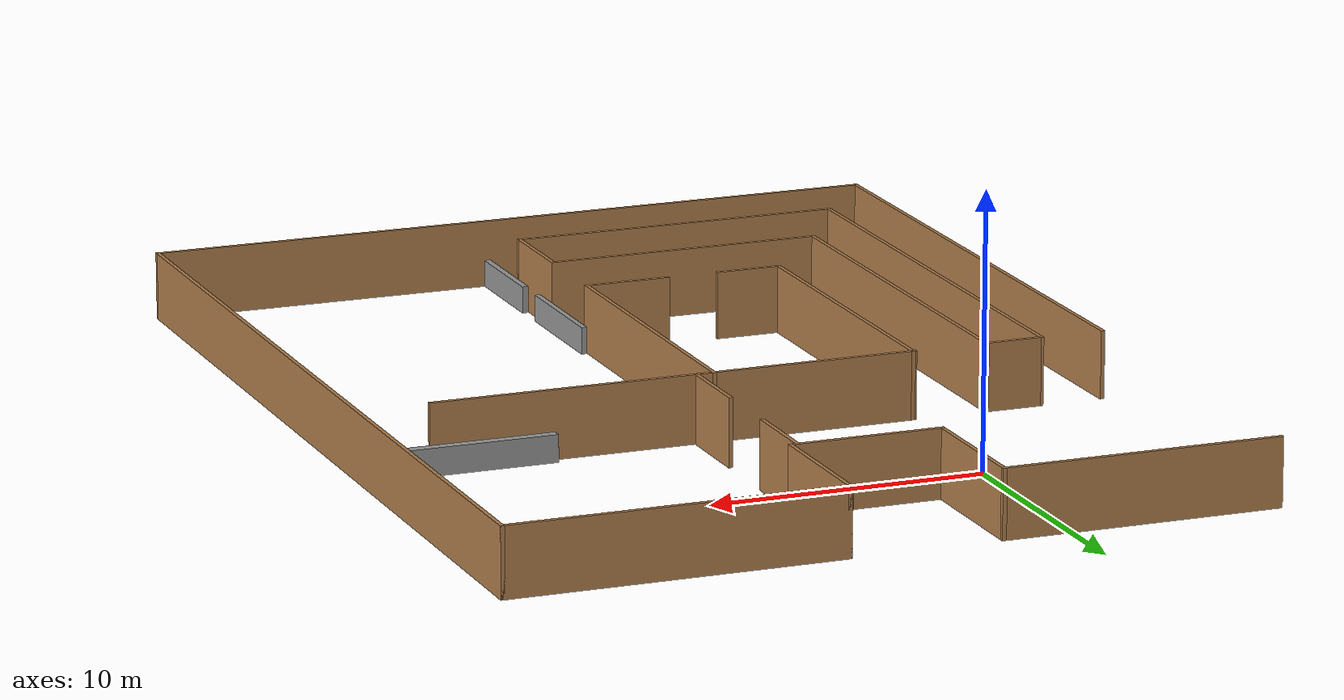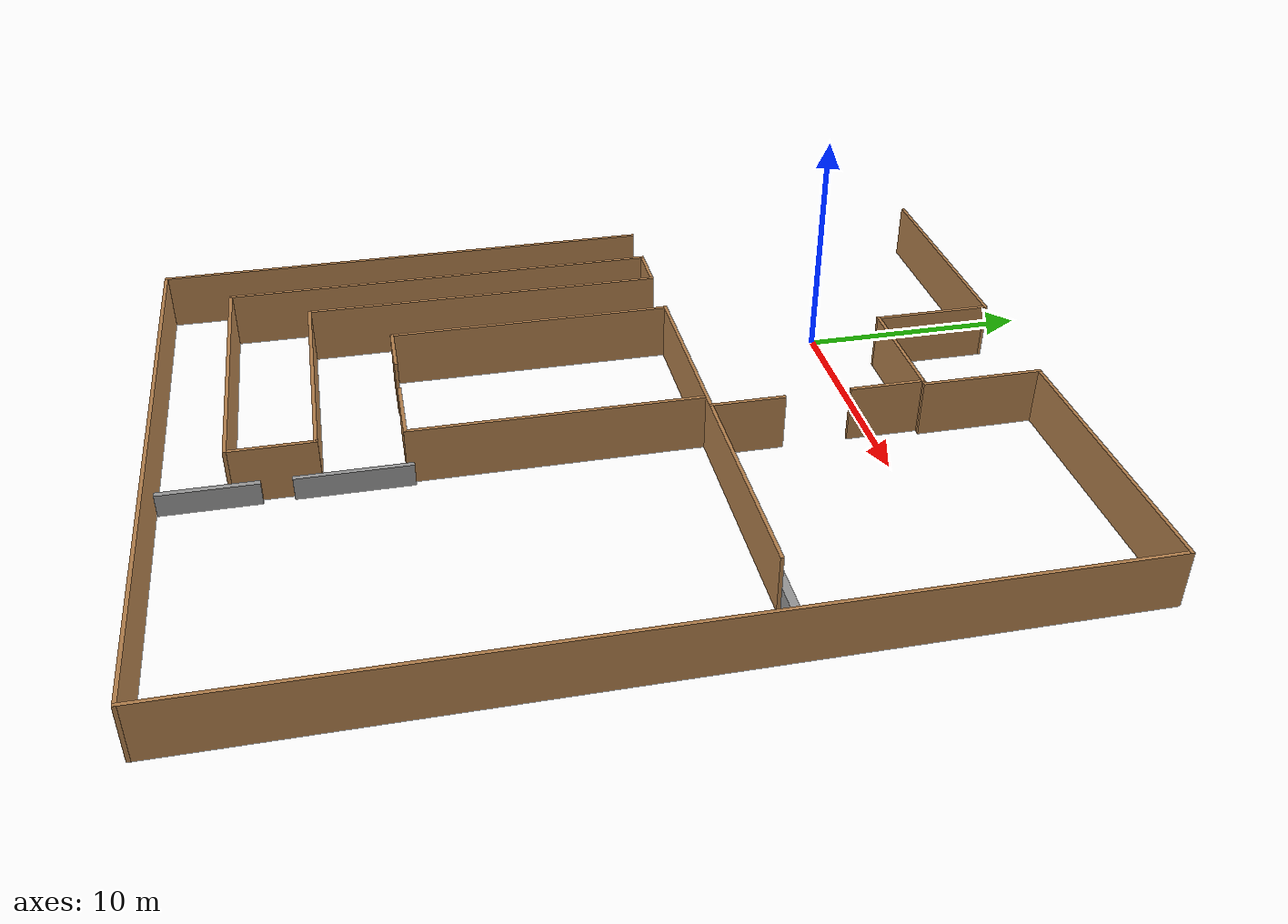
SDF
<sdf version="1.7">
 <world name="default">
  <gravity>0 0 -9.8</gravity>
  <magnetic_field>6e-06 2.3e-05 -4.2e-05</magnetic_field>
  <atmosphere type="adiabatic"/>
  <physics name="default_physics" default="0" type="ode">
   <max_step_size>0.001</max_step_size>
   <real_time_factor>1</real_time_factor>
   <real_time_update_rate>1000</real_time_update_rate>
  </physics>
  <scene>
   <ambient>0.4 0.4 0.4 1</ambient>
   <background>0.7 0.7 0.7 1</background>
   <shadows>1</shadows>
   <grid>0</grid>
   <origin_visual>0</origin_visual>
  </scene>
  <spherical_coordinates>
   <surface_model>EARTH_WGS84</surface_model>
   <latitude_deg>0</latitude_deg>
   <longitude_deg>0</longitude_deg>
   <elevation>0</elevation>
   <heading_deg>0</heading_deg>
  </spherical_coordinates>
  <light name="RetailShop_CeilingLight_001" type="point">
   <pose>2.77442 -3.62815 3.17847 0 -0 0</pose>
   <diffuse>0.5 0.5 0.5 1</diffuse>
   <specular>0.1 0.1 0.1 1</specular>
   <attenuation>
    <range>20</range>
    <constant>0.32</constant>
    <linear>0.01</linear>
    <quadratic>0.03</quadratic>
   </attenuation>
   <cast_shadows>0</cast_shadows>
   <direction>0 0 -1</direction>
   <spot><inner_angle>0</inner_angle><outer_angle>0</outer_angle><falloff>0</falloff></spot>
  </light>
  <light name="RetailShop_CeilingLight_002" type="point">
   <pose>5.38399 -5.38371 3.17847 0 -0 0</pose>
   <diffuse>0.5 0.5 0.5 1</diffuse>
   <specular>0.1 0.1 0.1 1</specular>
   <attenuation>
    <range>20</range>
    <constant>0.32</constant>
    <linear>0.01</linear>
    <quadratic>0.03</quadratic>
   </attenuation>
   <cast_shadows>0</cast_shadows>
   <direction>0 0 -1</direction>
   <spot><inner_angle>0</inner_angle><outer_angle>0</outer_angle><falloff>0</falloff></spot>
  </light>
  <light name="RetailShop_CeilingLight_003" type="point">
   <pose>5.38399 0.04192 3.17847 0 -0 0</pose>
   <diffuse>0.5 0.5 0.5 1</diffuse>
   <specular>0.1 0.1 0.1 1</specular>
   <attenuation>
    <range>20</range>
    <constant>0.32</constant>
    <linear>0.01</linear>
    <quadratic>0.03</quadratic>
   </attenuation>
   <cast_shadows>0</cast_shadows>
   <direction>0 0 -1</direction>
   <spot><inner_angle>0</inner_angle><outer_angle>0</outer_angle><falloff>0</falloff></spot>
  </light>
  <light name="RetailShop_CeilingLight_004" type="point">
   <pose>-3.21067 -5.38371 3.17847 0 -0 0</pose>
   <diffuse>0.5 0.5 0.5 1</diffuse>
   <specular>0.1 0.1 0.1 1</specular>
   <attenuation>
    <range>20</range>
    <constant>0.32</constant>
    <linear>0.01</linear>
    <quadratic>0.03</quadratic>
   </attenuation>
   <cast_shadows>0</cast_shadows>
   <direction>0 0 -1</direction>
   <spot><inner_angle>0</inner_angle><outer_angle>0</outer_angle><falloff>0</falloff></spot>
  </light>
  <light name="RetailShop_CeilingLight_005" type="point">
   <pose>-3.271 2.68593 3.17847 0 -0 0</pose>
   <diffuse>0.5 0.5 0.5 1</diffuse>
   <specular>0.1 0.1 0.1 1</specular>
   <attenuation>
    <range>20</range>
    <constant>0.32</constant>
    <linear>0.01</linear>
    <quadratic>0.03</quadratic>
   </attenuation>
   <cast_shadows>0</cast_shadows>
   <direction>0 0 -1</direction>
   <spot><inner_angle>0</inner_angle><outer_angle>0</outer_angle><falloff>0</falloff></spot>
  </light>
  <light name="RetailShop_CeilingLight_006" type="point">
   <pose>1.4932 4.69237 3.17847 0 -0 0</pose>
   <diffuse>0.5 0.5 0.5 1</diffuse>
   <specular>0.1 0.1 0.1 1</specular>
   <attenuation>
    <range>20</range>
    <constant>0.32</constant>
    <linear>0.01</linear>
    <quadratic>0.03</quadratic>
   </attenuation>
   <cast_shadows>0</cast_shadows>
   <direction>0 0 -1</direction>
   <spot><inner_angle>0</inner_angle><outer_angle>0</outer_angle><falloff>0</falloff></spot>
  </light>
  <audio><device>default</device></audio>
  <model name="wall10">
   <pose>3.93507 3.6415 0 0 -0 0</pose>
   <link name="Wall_36">
    <collision name="Wall_36_Collision">
     <geometry><box><size>5.5 0.15 2.5</size></box></geometry>
     <pose>0 0 1.25 0 -0 0</pose>
    </collision>
    <visual name="Wall_36_Visual">
     <pose>0 0 1.25 0 -0 0</pose>
     <geometry><box><size>5.5 0.15 2.5</size></box></geometry>
     <material>
      <script><uri>file://media/materials/scripts/gazebo.material</uri><name>Gazebo/Wood</name></script>
      <ambient>1 1 1 1</ambient>
     </material>
     <meta><layer>0</layer></meta>
    </visual>
    <pose>1.18507 -1.53348 0 0 -0 6e-06</pose>
   </link>
   <link name="Wall_38">
    <collision name="Wall_38_Collision">
     <geometry><box><size>5.25 0.15 2.5</size></box></geometry>
     <pose>0 0 1.25 0 -0 0</pose>
    </collision>
    <visual name="Wall_38_Visual">
     <pose>0 0 1.25 0 -0 0</pose>
     <geometry><box><size>5.25 0.15 2.5</size></box></geometry>
     <material>
      <script><uri>file://media/materials/scripts/gazebo.material</uri><name>Gazebo/Wood</name></script>
      <ambient>1 1 1 1</ambient>
     </material>
     <meta><layer>0</layer></meta>
    </visual>
    <pose>-1.49007 1.0165 0 0 -0 1.5708</pose>
   </link>
   <static>1</static>
  </model>
  <model name="bigwall1">
   <pose>10.06 -11.092 0 0 -0 0</pose>
   <link name="Wall_40">
    <collision name="Wall_40_Collision">
     <geometry><box><size>5.25 0.15 2.5</size></box></geometry>
     <pose>0 0 1.25 0 -0 0</pose>
    </collision>
    <visual name="Wall_40_Visual">
     <pose>0 0 1.25 0 -0 0</pose>
     <geometry><box><size>5.25 0.15 2.5</size></box></geometry>
     <material>
      <script><uri>file://media/materials/scripts/gazebo.material</uri><name>Gazebo/Wood</name></script>
      <ambient>1 1 1 1</ambient>
     </material>
     <meta><layer>0</layer></meta>
    </visual>
    <pose>-2.115 15.75 0 0 -0 1.5708</pose>
   </link>
   <link name="Wall_42">
    <collision name="Wall_42_Collision">
     <geometry><box><size>12.25 0.15 2.5</size></box></geometry>
     <pose>0 0 1.25 0 -0 0</pose>
    </collision>
    <visual name="Wall_42_Visual">
     <pose>0 0 1.25 0 -0 0</pose>
     <geometry><box><size>12.25 0.15 2.5</size></box></geometry>
     <material>
      <script><uri>file://media/materials/scripts/gazebo.material</uri><name>Gazebo/Wood</name></script>
      <ambient>1 1 1 1</ambient>
     </material>
     <meta><layer>0</layer></meta>
    </visual>
    <pose>3.935 18.3 0 0 -0 0</pose>
   </link>
   <link name="Wall_49">
    <collision name="Wall_49_Collision">
     <geometry><box><size>36.75 0.15 2.5</size></box></geometry>
     <pose>0 0 1.25 0 -0 0</pose>
    </collision>
    <visual name="Wall_49_Visual">
     <pose>0 0 1.25 0 -0 0</pose>
     <geometry><box><size>36.75 0.15 2.5</size></box></geometry>
     <material>
      <script><uri>file://media/materials/scripts/gazebo.material</uri><name>Gazebo/Wood</name></script>
      <ambient>1 1 1 1</ambient>
     </material>
     <meta><layer>0</layer></meta>
    </visual>
    <pose>9.985 0 0 0 -0 -1.5708</pose>
   </link>
   <static>1</static>
  </model>
  <model name="wall_40">
   <pose>-2.605 3.6415 0 0 -0 0</pose>
   <link name="Wall_96">
    <collision name="Wall_96_Collision">
     <geometry><box><size>10.25 0.15 2.5</size></box></geometry>
     <pose>0 0 1.25 0 -0 0</pose>
    </collision>
    <visual name="Wall_96_Visual">
     <pose>0 0 1.25 0 -0 0</pose>
     <geometry><box><size>10.25 0.15 2.5</size></box></geometry>
     <material>
      <script><uri>file://media/materials/scripts/gazebo.material</uri><name>Gazebo/Wood</name></script>
      <ambient>1 1 1 1</ambient>
     </material>
     <meta><layer>0</layer></meta>
    </visual>
    <pose>0 3.5665 0 0 -0 3.14159</pose>
   </link>
   <static>1</static>
  </model>
  <model name="WALL_C">
   <pose>6.195 -14.7335 0 0 -0 0</pose>
   <link name="Wall_98">
    <collision name="Wall_98_Collision">
     <geometry><box><size>27.85 0.15 2.5</size></box></geometry>
     <pose>0 0 1.25 0 -0 0</pose>
    </collision>
    <visual name="Wall_98_Visual">
     <pose>0 0 1.25 0 -0 0</pose>
     <geometry><box><size>27.85 0.15 2.5</size></box></geometry>
     <material>
      <script><uri>file://media/materials/scripts/gazebo.material</uri><name>Gazebo/Wood</name></script>
      <ambient>1 1 1 1</ambient>
     </material>
     <meta><layer>0</layer></meta>
    </visual>
    <pose>-0 -14.6585 0 0 -0 3.14159</pose>
   </link>
   <static>1</static>
  </model>
  <model name="WALL_D">
   <pose>-3.865 -14.7335 0 0 -0 0</pose>
   <link name="Wall_100">
    <collision name="Wall_100_Collision">
     <geometry><box><size>22.5 0.15 2.5</size></box></geometry>
     <pose>0 0 1.25 0 -0 0</pose>
    </collision>
    <visual name="Wall_100_Visual">
     <pose>0 0 1.25 0 -0 0</pose>
     <geometry><box><size>22.5 0.15 2.5</size></box></geometry>
     <material>
      <script><uri>file://media/materials/scripts/gazebo.material</uri><name>Gazebo/Wood</name></script>
      <ambient>1 1 1 1</ambient>
     </material>
     <meta><layer>0</layer></meta>
    </visual>
    <pose>-3.79 -3.4835 0 0 -0 1.5708</pose>
   </link>
   <static>1</static>
  </model>
  <light name="RetailShop_CeilingLight_006_clone" type="point">
   <pose>13.2087 -12.9727 3.17847 0 -0 0</pose>
   <diffuse>0.5 0.5 0.5 1</diffuse>
   <specular>0.1 0.1 0.1 1</specular>
   <direction>0 0 -1</direction>
   <attenuation>
    <range>20</range>
    <constant>0.32</constant>
    <linear>0.01</linear>
    <quadratic>0.03</quadratic>
   </attenuation>
   <cast_shadows>0</cast_shadows>
   <spot><inner_angle>0</inner_angle><outer_angle>0</outer_angle><falloff>0</falloff></spot>
  </light>
  <light name="RetailShop_CeilingLight_001_clone_clone" type="point">
   <pose>13.1607 -16.7337 3.17847 0 -0 0</pose>
   <diffuse>0.5 0.5 0.5 1</diffuse>
   <specular>0.1 0.1 0.1 1</specular>
   <direction>0 0 -1</direction>
   <attenuation>
    <range>20</range>
    <constant>0.32</constant>
    <linear>0.01</linear>
    <quadratic>0.03</quadratic>
   </attenuation>
   <cast_shadows>0</cast_shadows>
   <spot><inner_angle>0</inner_angle><outer_angle>0</outer_angle><falloff>0</falloff></spot>
  </light>
  <light name="RetailShop_CeilingLight_002_clone_clone" type="point">
   <pose>13.1202 -20.5297 3.17847 0 -0 0</pose>
   <diffuse>0.5 0.5 0.5 1</diffuse>
   <specular>0.1 0.1 0.1 1</specular>
   <direction>0 0 -1</direction>
   <attenuation>
    <range>20</range>
    <constant>0.32</constant>
    <linear>0.01</linear>
    <quadratic>0.03</quadratic>
   </attenuation>
   <cast_shadows>0</cast_shadows>
   <spot><inner_angle>0</inner_angle><outer_angle>0</outer_angle><falloff>0</falloff></spot>
  </light>
  <light name="RetailShop_CeilingLight_003_clone_clone" type="point">
   <pose>13.1202 -24.511 3.17847 0 -0 0</pose>
   <diffuse>0.5 0.5 0.5 1</diffuse>
   <specular>0.1 0.1 0.1 1</specular>
   <direction>0 0 -1</direction>
   <attenuation>
    <range>20</range>
    <constant>0.32</constant>
    <linear>0.01</linear>
    <quadratic>0.03</quadratic>
   </attenuation>
   <cast_shadows>0</cast_shadows>
   <spot><inner_angle>0</inner_angle><outer_angle>0</outer_angle><falloff>0</falloff></spot>
  </light>
  <model name="WALL_G">
   <pose>6.097 -3.5585 0 0 -0 0</pose>
   <link name="Wall_0">
    <collision name="Wall_0_Collision">
     <geometry><box><size>2.15 0.15 2.5</size></box></geometry>
     <pose>0 0 1.25 0 -0 0</pose>
    </collision>
    <visual name="Wall_0_Visual">
     <pose>0 0 1.25 0 -0 0</pose>
     <geometry><box><size>2.15 0.15 2.5</size></box></geometry>
     <material>
      <script><uri>file://media/materials/scripts/gazebo.material</uri><name>Gazebo/Wood</name></script>
      <ambient>1 1 1 1</ambient>
     </material>
     <meta><layer>0</layer></meta>
    </visual>
    <pose>-10.297 -3.4835 0 0 -0 0</pose>
   </link>
   <link name="Wall_9">
    <collision name="Wall_9_Collision">
     <geometry><box><size>18 0.15 2.5</size></box></geometry>
     <pose>0 0 1.25 0 -0 0</pose>
    </collision>
    <visual name="Wall_9_Visual">
     <pose>0 0 1.25 0 -0 0</pose>
     <geometry><box><size>18 0.15 2.5</size></box></geometry>
     <material>
      <script><uri>file://media/materials/scripts/gazebo.material</uri><name>Gazebo/Wood</name></script>
      <ambient>1 1 1 1</ambient>
     </material>
     <meta><layer>0</layer></meta>
    </visual>
    <pose>2.372 -3.4835 0 0 -0 0</pose>
   </link>
   <static>1</static>
  </model>
  <model name="WALL_F">
   <pose>3.885 -2.467 0 0 -0 0</pose>
   <link name="Wall_11">
    <collision name="Wall_11_Collision">
     <geometry><box><size>3.25 0.15 2.5</size></box></geometry>
     <pose>0 0 1.25 0 -0 0</pose>
    </collision>
    <visual name="Wall_11_Visual">
     <pose>0 0 1.25 0 -0 0</pose>
     <geometry><box><size>3.25 0.15 2.5</size></box></geometry>
     <material>
      <script><uri>file://media/materials/scripts/gazebo.material</uri><name>Gazebo/Wood</name></script>
      <ambient>1 1 1 1</ambient>
     </material>
     <meta><layer>0</layer></meta>
    </visual>
    <pose>3.81 -3.025 0 0 -0 1.5708</pose>
   </link>
   <link name="Wall_13">
    <collision name="Wall_13_Collision">
     <geometry><box><size>3.25 0.15 2.5</size></box></geometry>
     <pose>0 0 1.25 0 -0 0</pose>
    </collision>
    <visual name="Wall_13_Visual">
     <pose>0 0 1.25 0 -0 0</pose>
     <geometry><box><size>3.25 0.15 2.5</size></box></geometry>
     <material>
      <script><uri>file://media/materials/scripts/gazebo.material</uri><name>Gazebo/Wood</name></script>
      <ambient>1 1 1 1</ambient>
     </material>
     <meta><layer>0</layer></meta>
    </visual>
    <pose>3.81 3.025 0 0 -0 -1.5708</pose>
   </link>
   <static>1</static>
  </model>
  <model name="WALL_H1">
   <pose>0.875 -13.2335 0 0 -0 0</pose>
   <link name="Wall_21">
    <collision name="Wall_21_Collision">
     <geometry><box><size>19.5 0.15 2.5</size></box></geometry>
     <pose>0 0 1.25 0 -0 0</pose>
    </collision>
    <visual name="Wall_21_Visual">
     <pose>0 0 1.25 0 -0 0</pose>
     <geometry><box><size>19.5 0.15 2.5</size></box></geometry>
     <material>
      <script><uri>file://media/materials/scripts/gazebo.material</uri><name>Gazebo/Wood</name></script>
      <ambient>1 1 1 1</ambient>
     </material>
     <meta><layer>0</layer></meta>
    </visual>
    <pose>-6.175 -3.4835 0 0 -0 -1.5708</pose>
   </link>
   <link name="Wall_23">
    <collision name="Wall_23_Collision">
     <geometry><box><size>12.5 0.15 2.5</size></box></geometry>
     <pose>0 0 1.25 0 -0 0</pose>
    </collision>
    <visual name="Wall_23_Visual">
     <pose>0 0 1.25 0 -0 0</pose>
     <geometry><box><size>12.5 0.15 2.5</size></box></geometry>
     <material>
      <script><uri>file://media/materials/scripts/gazebo.material</uri><name>Gazebo/Wood</name></script>
      <ambient>1 1 1 1</ambient>
     </material>
     <meta><layer>0</layer></meta>
    </visual>
    <pose>1e-06 -13.1585 0 0 -0 0</pose>
   </link>
   <static>1</static>
  </model>
  <model name="WALL_I_1">
   <pose>1.925 -13.2335 0 0 -0 0</pose>
   <link name="Wall_27">
    <collision name="Wall_27_Collision">
     <geometry><box><size>16 0.15 2.5</size></box></geometry>
     <pose>0 0 1.25 0 -0 0</pose>
    </collision>
    <visual name="Wall_27_Visual">
     <pose>0 0 1.25 0 -0 0</pose>
     <geometry><box><size>16 0.15 2.5</size></box></geometry>
     <material>
      <script><uri>file://media/materials/scripts/gazebo.material</uri><name>Gazebo/Wood</name></script>
      <ambient>1 1 1 1</ambient>
     </material>
     <meta><layer>0</layer></meta>
    </visual>
    <pose>-5.125 -1.7335 0 0 -0 -1.5708</pose>
   </link>
   <link name="Wall_30">
    <collision name="Wall_30_Collision">
     <geometry><box><size>10.4 0.15 2.5</size></box></geometry>
     <pose>0 0 1.25 0 -0 0</pose>
    </collision>
    <visual name="Wall_30_Visual">
     <pose>0 0 1.25 0 -0 0</pose>
     <geometry><box><size>10.4 0.15 2.5</size></box></geometry>
     <material>
      <script><uri>file://media/materials/scripts/gazebo.material</uri><name>Gazebo/Wood</name></script>
      <ambient>1 1 1 1</ambient>
     </material>
     <meta><layer>0</layer></meta>
    </visual>
    <pose>0 -9.6585 0 0 -0 0</pose>
   </link>
   <link name="Wall_32">
    <collision name="Wall_32_Collision">
     <geometry><box><size>3.65 0.15 2.5</size></box></geometry>
     <pose>0 0 1.25 0 -0 0</pose>
    </collision>
    <visual name="Wall_32_Visual">
     <pose>0 0 1.25 0 -0 0</pose>
     <geometry><box><size>3.65 0.15 2.5</size></box></geometry>
     <material>
      <script><uri>file://media/materials/scripts/gazebo.material</uri><name>Gazebo/Wood</name></script>
      <ambient>1 1 1 1</ambient>
     </material>
     <meta><layer>0</layer></meta>
    </visual>
    <pose>5.125 -11.4085 0 0 -0 -1.5708</pose>
   </link>
   <static>1</static>
  </model>
  <model name="WALL_T1">
   <pose>3.325 -9.7336 0 0 -0 0</pose>
   <link name="Wall_35">
    <collision name="Wall_35_Collision">
     <geometry><box><size>12.5004 0.15 2.5</size></box></geometry>
     <pose>0 0 1.25 0 -0 0</pose>
    </collision>
    <visual name="Wall_35_Visual">
     <pose>0 0 1.25 0 -0 0</pose>
     <geometry><box><size>12.5004 0.15 2.5</size></box></geometry>
     <material>
      <script><uri>file://media/materials/scripts/gazebo.material</uri><name>Gazebo/Wood</name></script>
      <ambient>1 1 1 1</ambient>
     </material>
     <meta><layer>0</layer></meta>
    </visual>
    <pose>-3.725 -3.4834 0 0 -0 -1.5708</pose>
   </link>
   <link name="Wall_40">
    <collision name="Wall_40_Collision">
     <geometry><box><size>2.5 0.15 2.5</size></box></geometry>
     <pose>0 0 1.25 0 -0 0</pose>
    </collision>
    <visual name="Wall_40_Visual">
     <pose>0 0 1.25 0 -0 0</pose>
     <geometry><box><size>2.5 0.15 2.5</size></box></geometry>
     <material>
      <script><uri>file://media/materials/scripts/gazebo.material</uri><name>Gazebo/Wood</name></script>
      <ambient>1 1 1 1</ambient>
     </material>
     <meta><layer>0</layer></meta>
    </visual>
    <pose>-2.55 -9.6584 0 0 -0 0</pose>
   </link>
   <link name="Wall_42">
    <collision name="Wall_42_Collision">
     <geometry><box><size>3.235 0.15 2.5</size></box></geometry>
     <pose>0 0 1.25 0 -0 0</pose>
    </collision>
    <visual name="Wall_42_Visual">
     <pose>0 0 1.25 0 -0 0</pose>
     <geometry><box><size>3.235 0.15 2.5</size></box></geometry>
     <material>
      <script><uri>file://media/materials/scripts/gazebo.material</uri><name>Gazebo/Wood</name></script>
      <ambient>1 1 1 1</ambient>
     </material>
     <meta><layer>0</layer></meta>
    </visual>
    <pose>2.1825 -9.6584 0 0 -0 0</pose>
   </link>
   <link name="Wall_44">
    <collision name="Wall_44_Collision">
     <geometry><box><size>12.5 0.15 2.5</size></box></geometry>
     <pose>0 0 1.25 0 -0 0</pose>
    </collision>
    <visual name="Wall_44_Visual">
     <pose>0 0 1.25 0 -0 0</pose>
     <geometry><box><size>12.5 0.15 2.5</size></box></geometry>
     <material>
      <script><uri>file://media/materials/scripts/gazebo.material</uri><name>Gazebo/Wood</name></script>
      <ambient>1 1 1 1</ambient>
     </material>
     <meta><layer>0</layer></meta>
    </visual>
    <pose>3.725 -3.4834 0 0 -0 1.5708</pose>
   </link>
   <static>1</static>
  </model>
  <light name="RetailShop_CeilingLight_004_clone" type="point">
   <pose>-6.13266 -17.1599 3.17847 0 -0 0</pose>
   <diffuse>0.5 0.5 0.5 1</diffuse>
   <specular>0.1 0.1 0.1 1</specular>
   <direction>0 0 -1</direction>
   <attenuation>
    <range>20</range>
    <constant>0.32</constant>
    <linear>0.01</linear>
    <quadratic>0.03</quadratic>
   </attenuation>
   <cast_shadows>0</cast_shadows>
   <spot><inner_angle>0</inner_angle><outer_angle>0</outer_angle><falloff>0</falloff></spot>
  </light>
  <light name="RetailShop_CeilingLight_005_clone" type="point">
   <pose>0.627461 -27.5951 3.17847 0 -0 0</pose>
   <diffuse>0.5 0.5 0.5 1</diffuse>
   <specular>0.1 0.1 0.1 1</specular>
   <direction>0 0 -1</direction>
   <attenuation>
    <range>20</range>
    <constant>0.32</constant>
    <linear>0.01</linear>
    <quadratic>0.03</quadratic>
   </attenuation>
   <cast_shadows>0</cast_shadows>
   <spot><inner_angle>0</inner_angle><outer_angle>0</outer_angle><falloff>0</falloff></spot>
  </light>
  <light name="RetailShop_CeilingLight_006_clone_0" type="point">
   <pose>-1.27399 -20.3289 3.17847 0 -0 0</pose>
   <diffuse>0.5 0.5 0.5 1</diffuse>
   <specular>0.1 0.1 0.1 1</specular>
   <direction>0 0 -1</direction>
   <attenuation>
    <range>20</range>
    <constant>0.32</constant>
    <linear>0.01</linear>
    <quadratic>0.03</quadratic>
   </attenuation>
   <cast_shadows>0</cast_shadows>
   <spot><inner_angle>0</inner_angle><outer_angle>0</outer_angle><falloff>0</falloff></spot>
  </light>
  <light name="RetailShop_CeilingLight_004_clone_clone" type="point">
   <pose>3.45814 -13.6533 3.17847 0 -0 0</pose>
   <diffuse>0.5 0.5 0.5 1</diffuse>
   <specular>0.1 0.1 0.1 1</specular>
   <direction>0 0 -1</direction>
   <attenuation>
    <range>20</range>
    <constant>0.32</constant>
    <linear>0.01</linear>
    <quadratic>0.03</quadratic>
   </attenuation>
   <cast_shadows>0</cast_shadows>
   <spot><inner_angle>0</inner_angle><outer_angle>0</outer_angle><falloff>0</falloff></spot>
  </light>
  <light name="RetailShop_CeilingLight_005_clone_clone" type="point">
   <pose>13.5136 -0.725148 3.17847 0 -0 0</pose>
   <diffuse>0.5 0.5 0.5 1</diffuse>
   <specular>0.1 0.1 0.1 1</specular>
   <direction>0 0 -1</direction>
   <attenuation>
    <range>20</range>
    <constant>0.32</constant>
    <linear>0.01</linear>
    <quadratic>0.03</quadratic>
   </attenuation>
   <cast_shadows>0</cast_shadows>
   <spot><inner_angle>0</inner_angle><outer_angle>0</outer_angle><falloff>0</falloff></spot>
  </light>
  <model name="unit_box">
   <pose>16.4559 -6.76923 0.513382 0 -1e-06 -2.5e-05</pose>
   <link name="link">
    <inertial>
     <mass>1</mass>
     <inertia>
      <ixx>0.166667</ixx>
      <ixy>0</ixy>
      <ixz>0</ixz>
      <iyy>0.166667</iyy>
      <iyz>0</iyz>
      <izz>0.166667</izz>
     </inertia>
    </inertial>
    <collision name="collision"><geometry><box><size>7.02816 0.351105 1</size></box></geometry></collision>
    <visual name="visual">
     <geometry><box><size>7.02816 0.351105 1</size></box></geometry>
     <material>
      <script><name>Gazebo/Grey</name><uri>file://media/materials/scripts/gazebo.material</uri></script>
     </material>
    </visual>
   </link>
  </model>
  <model name="unit_box_0">
   <pose>7.264 -21.5564 0.51338 -3e-06 -1e-06 -7e-05</pose>
   <link name="link">
    <inertial>
     <mass>1</mass>
     <inertia>
      <ixx>0.166667</ixx>
      <ixy>0</ixy>
      <ixz>0</ixz>
      <iyy>0.166667</iyy>
      <iyz>0</iyz>
      <izz>0.166667</izz>
     </inertia>
    </inertial>
    <collision name="collision"><geometry><box><size>0.202677 4.8126 1</size></box></geometry></collision>
    <visual name="visual">
     <geometry><box><size>0.202677 4.8126 1</size></box></geometry>
     <material>
      <script><name>Gazebo/Grey</name><uri>file://media/materials/scripts/gazebo.material</uri></script>
     </material>
    </visual>
   </link>
  </model>
  <model name="unit_box_1">
   <pose>7.28302 -27.2445 0.513382 -0 -0 -1.6e-05</pose>
   <link name="link">
    <inertial>
     <mass>1</mass>
     <inertia>
      <ixx>0.166667</ixx>
      <ixy>0</ixy>
      <ixz>0</ixz>
      <iyy>0.166667</iyy>
      <iyz>0</iyz>
      <izz>0.166667</izz>
     </inertia>
    </inertial>
    <collision name="collision"><geometry><box><size>0.231277 4.07995 1</size></box></geometry></collision>
    <visual name="visual">
     <geometry><box><size>0.231277 4.07995 1</size></box></geometry>
     <material>
      <script><name>Gazebo/Grey</name><uri>file://media/materials/scripts/gazebo.material</uri></script>
     </material>
    </visual>
   </link>
  </model>
 </world>
</sdf>
